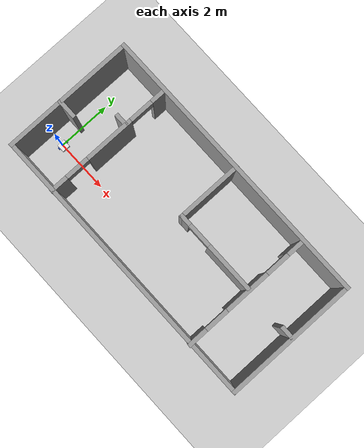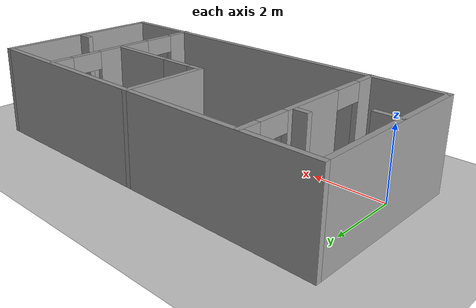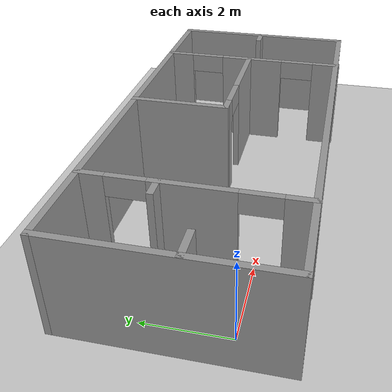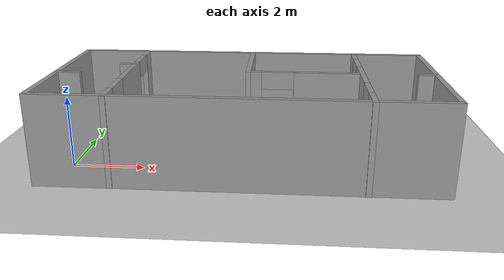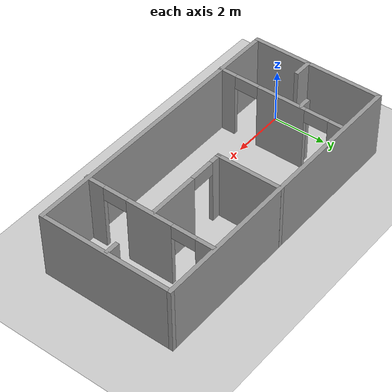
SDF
<sdf version="1.7">
 <world name="default">
  <light name="sun" type="directional">
   <pose>0 0 10 0 -0 0</pose>
   <diffuse>0.8 0.8 0.8 1</diffuse>
   <specular>0.2 0.2 0.2 1</specular>
   <attenuation>
    <range>1000</range>
    <constant>0.9</constant>
    <linear>0.01</linear>
    <quadratic>0.001</quadratic>
   </attenuation>
   <direction>-0.5 0.1 -0.9</direction>
   <spot><inner_angle>0</inner_angle><outer_angle>0</outer_angle><falloff>0</falloff></spot>
  </light>
  <model name="ground_plane">
   <static>1</static>
   <link name="link">
    <collision name="collision">
     <geometry><plane><normal>0 0 1</normal><size>100 100</size></plane></geometry>
     <surface>
      <contact><collide_bitmask>65535</collide_bitmask></contact>
      <friction><ode><mu>100</mu><mu2>50</mu2></ode></friction>
     </surface>
    </collision>
    <visual name="visual">
     <cast_shadows>0</cast_shadows>
     <geometry><plane><normal>0 0 1</normal><size>100 100</size></plane></geometry>
     <material>
      <script><uri>file://media/materials/scripts/gazebo.material</uri><name>Gazebo/Grey</name></script>
     </material>
    </visual>
   </link>
  </model>
  <gravity>0 0 -9.8</gravity>
  <magnetic_field>6e-06 2.3e-05 -4.2e-05</magnetic_field>
  <atmosphere type="adiabatic"/>
  <physics type="ode">
   <max_step_size>0.001</max_step_size>
   <real_time_factor>1</real_time_factor>
   <real_time_update_rate>1000</real_time_update_rate>
  </physics>
  <scene><ambient>0.4 0.4 0.4 1</ambient><background>0.7 0.7 0.7 1</background><shadows>1</shadows></scene>
  <audio><device>default</device></audio>
  <spherical_coordinates>
   <surface_model>EARTH_WGS84</surface_model>
   <latitude_deg>0</latitude_deg>
   <longitude_deg>0</longitude_deg>
   <elevation>0</elevation>
   <heading_deg>0</heading_deg>
  </spherical_coordinates>
  <model name="bot_name">
   <link name="base_link">
    <inertial>
     <pose>0.065 0 0.0625 0 -0 0</pose>
     <mass>0.6</mass>
     <inertia>
      <ixx>0.00525625</ixx>
      <ixy>0</ixy>
      <ixz>0.0005625</ixz>
      <iyy>0.00593125</iyy>
      <iyz>0</iyz>
      <izz>0.008275</izz>
     </inertia>
    </inertial>
    <collision name="base_link_fixed_joint_lump__chassis_collision">
     <pose>0.05 0 0.075 0 -0 0</pose>
     <geometry><box><size>0.3 0.3 0.15</size></box></geometry>
    </collision>
    <collision name="base_link_fixed_joint_lump__caster_wheel_collision_1">
     <pose>0.14 0 0 0 -0 0</pose>
     <geometry><sphere><radius>0.05</radius></sphere></geometry>
     <surface><friction><ode><mu>0.001</mu><mu2>0.001</mu2></ode></friction></surface>
    </collision>
    <visual name="base_link_fixed_joint_lump__chassis_visual">
     <pose>0.05 0 0.075 0 -0 0</pose>
     <geometry><box><size>0.3 0.3 0.15</size></box></geometry>
     <material>
      <script><name>Gazebo/White</name><uri>file://media/materials/scripts/gazebo.material</uri></script>
     </material>
    </visual>
    <visual name="base_link_fixed_joint_lump__caster_wheel_visual_1">
     <pose>0.14 0 0 0 -0 0</pose>
     <geometry><sphere><radius>0.05</radius></sphere></geometry>
     <material>
      <script><name>Gazebo/Black</name><uri>file://media/materials/scripts/gazebo.material</uri></script>
     </material>
    </visual>
   </link>
   <joint name="left_wheel_joint" type="revolute">
    <pose relative_to="base_link">0 0.175 0 -1.5708 0 0</pose>
    <parent>base_link</parent>
    <child>left_wheel</child>
    <axis>
     <xyz>0 0 1</xyz>
     <limit><lower>-1e+16</lower><upper>1e+16</upper></limit>
     <dynamics><spring_reference>0</spring_reference><spring_stiffness>0</spring_stiffness></dynamics>
    </axis>
   </joint>
   <link name="left_wheel">
    <pose relative_to="left_wheel_joint">0 0 0 0 -0 0</pose>
    <inertial>
     <mass>0.1</mass>
     <inertia>
      <ixx>7.58333e-05</ixx>
      <ixy>0</ixy>
      <ixz>0</ixz>
      <iyy>7.58333e-05</iyy>
      <iyz>0</iyz>
      <izz>0.000125</izz>
     </inertia>
    </inertial>
    <collision name="left_wheel_collision">
     <geometry><cylinder><length>0.04</length><radius>0.05</radius></cylinder></geometry>
    </collision>
    <visual name="left_wheel_visual">
     <geometry><cylinder><length>0.04</length><radius>0.05</radius></cylinder></geometry>
     <material>
      <script><name>Gazebo/Blue</name><uri>file://media/materials/scripts/gazebo.material</uri></script>
     </material>
    </visual>
   </link>
   <joint name="right_wheel_joint" type="revolute">
    <pose relative_to="base_link">0 -0.175 0 1.5708 -0 0</pose>
    <parent>base_link</parent>
    <child>right_wheel</child>
    <axis>
     <xyz>0 0 -1</xyz>
     <limit><lower>-1e+16</lower><upper>1e+16</upper></limit>
     <dynamics><spring_reference>0</spring_reference><spring_stiffness>0</spring_stiffness></dynamics>
    </axis>
   </joint>
   <link name="right_wheel">
    <pose relative_to="right_wheel_joint">0 0 0 0 -0 0</pose>
    <inertial>
     <mass>0.1</mass>
     <inertia>
      <ixx>7.58333e-05</ixx>
      <ixy>0</ixy>
      <ixz>0</ixz>
      <iyy>7.58333e-05</iyy>
      <iyz>0</iyz>
      <izz>0.000125</izz>
     </inertia>
    </inertial>
    <collision name="right_wheel_collision">
     <geometry><cylinder><length>0.04</length><radius>0.05</radius></cylinder></geometry>
    </collision>
    <visual name="right_wheel_visual">
     <geometry><cylinder><length>0.04</length><radius>0.05</radius></cylinder></geometry>
     <material>
      <script><name>Gazebo/Blue</name><uri>file://media/materials/scripts/gazebo.material</uri></script>
     </material>
    </visual>
   </link>
   <static>0</static>
   <plugin name="diff_drive" filename="libgazebo_ros_diff_drive.so">
    <left_joint>left_wheel_joint</left_joint>
    <right_joint>right_wheel_joint</right_joint>
    <wheel_separation>0.35</wheel_separation>
    <wheel_diameter>0.1</wheel_diameter>
    <max_wheel_torque>200</max_wheel_torque>
    <max_wheel_acceleration>10.0</max_wheel_acceleration>
    <odometry_frame>odom</odometry_frame>
    <robot_base_frame>base_link</robot_base_frame>
    <publish_odom>1</publish_odom>
    <publish_odom_tf>1</publish_odom_tf>
    <publish_wheel_tf>1</publish_wheel_tf>
   </plugin>
   <pose>0.022102 7.1e-05 0.05 0 1e-06 0.000387</pose>
  </model>
  <model name="BigRoom">
   <pose>4.73477 1.15842 0 0 -0 0</pose>
   <link name="Wall_43">
    <collision name="Wall_43_Collision">
     <geometry><box><size>10.75 0.15 2.5</size></box></geometry>
     <pose>0 0 1.25 0 -0 0</pose>
    </collision>
    <visual name="Wall_43_Visual">
     <pose>0 0 1.25 0 -0 0</pose>
     <geometry><box><size>10.75 0.15 2.5</size></box></geometry>
     <material>
      <script><uri>file://media/materials/scripts/gazebo.material</uri><name>Gazebo/Grey</name></script>
      <ambient>1 1 1 1</ambient>
     </material>
     <meta><layer>0</layer></meta>
    </visual>
    <pose>-0 -2.40954 0 0 -0 0</pose>
   </link>
   <link name="Wall_44">
    <collision name="Wall_44_Collision">
     <geometry><box><size>5 0.15 2.5</size></box></geometry>
     <pose>0 0 1.25 0 -0 0</pose>
    </collision>
    <visual name="Wall_44_Visual">
     <pose>0 0 1.25 0 -0 0</pose>
     <geometry><box><size>5 0.15 2.5</size></box></geometry>
     <material>
      <script><uri>file://media/materials/scripts/gazebo.material</uri><name>Gazebo/Grey</name></script>
      <ambient>1 1 1 1</ambient>
     </material>
     <meta><layer>0</layer></meta>
    </visual>
    <pose>5.3 0.015463 0 0 -0 1.5708</pose>
   </link>
   <link name="Wall_45">
    <collision name="Wall_45_Collision">
     <geometry><box><size>10.75 0.15 2.5</size></box></geometry>
     <pose>0 0 1.25 0 -0 0</pose>
    </collision>
    <visual name="Wall_45_Visual">
     <pose>0 0 1.25 0 -0 0</pose>
     <geometry><box><size>10.75 0.15 2.5</size></box></geometry>
     <material>
      <script><uri>file://media/materials/scripts/gazebo.material</uri><name>Gazebo/Grey</name></script>
      <ambient>1 1 1 1</ambient>
     </material>
     <meta><layer>0</layer></meta>
    </visual>
    <pose>-0 2.44046 0 0 -0 3.14159</pose>
   </link>
   <link name="Wall_46">
    <collision name="Wall_46_Collision">
     <geometry><box><size>5 0.15 2.5</size></box></geometry>
     <pose>0 0 1.25 0 -0 0</pose>
    </collision>
    <visual name="Wall_46_Visual">
     <pose>0 0 1.25 0 -0 0</pose>
     <geometry><box><size>5 0.15 2.5</size></box></geometry>
     <material>
      <script><uri>file://media/materials/scripts/gazebo.material</uri><name>Gazebo/Grey</name></script>
      <ambient>1 1 1 1</ambient>
     </material>
     <meta><layer>0</layer></meta>
    </visual>
    <pose>-5.3 0.015463 0 0 -0 -1.5708</pose>
   </link>
   <link name="Wall_48">
    <pose>-3.3177 0 0 0 -0 -1.5708</pose>
    <visual name="Wall_48_Visual_0">
     <pose>-2.17685 0 1.25 0 -0 0</pose>
     <geometry><box><size>0.646304 0.15 2.5</size></box></geometry>
     <material>
      <script><uri>file://media/materials/scripts/gazebo.material</uri><name>Gazebo/Grey</name></script>
      <ambient>1 1 1 1</ambient>
     </material>
     <meta><layer>0</layer></meta>
    </visual>
    <collision name="Wall_48_Collision_0">
     <geometry><box><size>0.646304 0.15 2.5</size></box></geometry>
     <pose>-2.17685 0 1.25 0 -0 0</pose>
    </collision>
    <visual name="Wall_48_Visual_1">
     <pose>-0.023696 0 1.25 0 -0 0</pose>
     <geometry><box><size>1.86 0.15 2.5</size></box></geometry>
     <material>
      <script><uri>file://media/materials/scripts/gazebo.material</uri><name>Gazebo/Grey</name></script>
      <ambient>1 1 1 1</ambient>
     </material>
     <meta><layer>0</layer></meta>
    </visual>
    <collision name="Wall_48_Collision_1">
     <geometry><box><size>1.86 0.15 2.5</size></box></geometry>
     <pose>-0.023696 0 1.25 0 -0 0</pose>
    </collision>
    <visual name="Wall_48_Visual_2">
     <pose>2.15315 0 1.25 0 -0 0</pose>
     <geometry><box><size>0.693696 0.15 2.5</size></box></geometry>
     <material>
      <script><uri>file://media/materials/scripts/gazebo.material</uri><name>Gazebo/Grey</name></script>
      <ambient>1 1 1 1</ambient>
     </material>
     <meta><layer>0</layer></meta>
    </visual>
    <collision name="Wall_48_Collision_2">
     <geometry><box><size>0.693696 0.15 2.5</size></box></geometry>
     <pose>2.15315 0 1.25 0 -0 0</pose>
    </collision>
    <visual name="Wall_48_Visual_3">
     <pose>-1.4037 0 2.25 0 -0 0</pose>
     <geometry><box><size>0.9 0.15 0.5</size></box></geometry>
     <material>
      <script><uri>file://media/materials/scripts/gazebo.material</uri><name>Gazebo/Grey</name></script>
      <ambient>1 1 1 1</ambient>
     </material>
     <meta><layer>0</layer></meta>
    </visual>
    <collision name="Wall_48_Collision_3">
     <geometry><box><size>0.9 0.15 0.5</size></box></geometry>
     <pose>-1.4037 0 2.25 0 -0 0</pose>
    </collision>
    <visual name="Wall_48_Visual_4">
     <pose>1.3563 0 2.25 0 -0 0</pose>
     <geometry><box><size>0.9 0.15 0.5</size></box></geometry>
     <material>
      <script><uri>file://media/materials/scripts/gazebo.material</uri><name>Gazebo/Grey</name></script>
      <ambient>1 1 1 1</ambient>
     </material>
     <meta><layer>0</layer></meta>
    </visual>
    <collision name="Wall_48_Collision_4">
     <geometry><box><size>0.9 0.15 0.5</size></box></geometry>
     <pose>1.3563 0 2.25 0 -0 0</pose>
    </collision>
   </link>
   <link name="Wall_50">
    <pose>3.27361 -0.017391 0 0 -0 -1.5708</pose>
    <visual name="Wall_50_Visual_0">
     <pose>-2.13954 0 1.25 0 -0 0</pose>
     <geometry><box><size>0.720913 0.15 2.5</size></box></geometry>
     <material>
      <script><uri>file://media/materials/scripts/gazebo.material</uri><name>Gazebo/Grey</name></script>
      <ambient>1 1 1 1</ambient>
     </material>
     <meta><layer>0</layer></meta>
    </visual>
    <collision name="Wall_50_Collision_0">
     <geometry><box><size>0.720913 0.15 2.5</size></box></geometry>
     <pose>-2.13954 0 1.25 0 -0 0</pose>
    </collision>
    <visual name="Wall_50_Visual_1">
     <pose>-0.018087 0 1.25 0 -0 0</pose>
     <geometry><box><size>1.722 0.15 2.5</size></box></geometry>
     <material>
      <script><uri>file://media/materials/scripts/gazebo.material</uri><name>Gazebo/Grey</name></script>
      <ambient>1 1 1 1</ambient>
     </material>
     <meta><layer>0</layer></meta>
    </visual>
    <collision name="Wall_50_Collision_1">
     <geometry><box><size>1.722 0.15 2.5</size></box></geometry>
     <pose>-0.018087 0 1.25 0 -0 0</pose>
    </collision>
    <visual name="Wall_50_Visual_2">
     <pose>2.12146 0 1.25 0 -0 0</pose>
     <geometry><box><size>0.757087 0.15 2.5</size></box></geometry>
     <material>
      <script><uri>file://media/materials/scripts/gazebo.material</uri><name>Gazebo/Grey</name></script>
      <ambient>1 1 1 1</ambient>
     </material>
     <meta><layer>0</layer></meta>
    </visual>
    <collision name="Wall_50_Collision_2">
     <geometry><box><size>0.757087 0.15 2.5</size></box></geometry>
     <pose>2.12146 0 1.25 0 -0 0</pose>
    </collision>
    <visual name="Wall_50_Visual_3">
     <pose>-1.32909 0 2.25 0 -0 0</pose>
     <geometry><box><size>0.9 0.15 0.5</size></box></geometry>
     <material>
      <script><uri>file://media/materials/scripts/gazebo.material</uri><name>Gazebo/Grey</name></script>
      <ambient>1 1 1 1</ambient>
     </material>
     <meta><layer>0</layer></meta>
    </visual>
    <collision name="Wall_50_Collision_3">
     <geometry><box><size>0.9 0.15 0.5</size></box></geometry>
     <pose>-1.32909 0 2.25 0 -0 0</pose>
    </collision>
    <visual name="Wall_50_Visual_4">
     <pose>1.29291 0 2.25 0 -0 0</pose>
     <geometry><box><size>0.9 0.15 0.5</size></box></geometry>
     <material>
      <script><uri>file://media/materials/scripts/gazebo.material</uri><name>Gazebo/Grey</name></script>
      <ambient>1 1 1 1</ambient>
     </material>
     <meta><layer>0</layer></meta>
    </visual>
    <collision name="Wall_50_Collision_4">
     <geometry><box><size>0.9 0.15 0.5</size></box></geometry>
     <pose>1.29291 0 2.25 0 -0 0</pose>
    </collision>
   </link>
   <link name="Wall_52">
    <collision name="Wall_52_Collision">
     <geometry><box><size>2.5 0.15 2.5</size></box></geometry>
     <pose>0 0 1.25 0 -0 0</pose>
    </collision>
    <visual name="Wall_52_Visual">
     <pose>0 0 1.25 0 -0 0</pose>
     <geometry><box><size>2.5 0.15 2.5</size></box></geometry>
     <material>
      <script><uri>file://media/materials/scripts/gazebo.material</uri><name>Gazebo/Grey</name></script>
      <ambient>1 1 1 1</ambient>
     </material>
     <meta><layer>0</layer></meta>
    </visual>
    <pose>0.090999 1.26739 0 0 -0 -1.5708</pose>
   </link>
   <link name="Wall_56">
    <pose>1.641 0.092391 0 0 -0 0</pose>
    <visual name="Wall_56_Visual_0">
     <pose>-1.39605 0 1.25 0 -0 0</pose>
     <geometry><box><size>0.4579 0.15 2.5</size></box></geometry>
     <material>
      <script><uri>file://media/materials/scripts/gazebo.material</uri><name>Gazebo/Grey</name></script>
      <ambient>1 1 1 1</ambient>
     </material>
     <meta><layer>0</layer></meta>
    </visual>
    <collision name="Wall_56_Collision_0">
     <geometry><box><size>0.4579 0.15 2.5</size></box></geometry>
     <pose>-1.39605 0 1.25 0 -0 0</pose>
    </collision>
    <visual name="Wall_56_Visual_1">
     <pose>0.67895 0 1.25 0 -0 0</pose>
     <geometry><box><size>1.8921 0.15 2.5</size></box></geometry>
     <material>
      <script><uri>file://media/materials/scripts/gazebo.material</uri><name>Gazebo/Grey</name></script>
      <ambient>1 1 1 1</ambient>
     </material>
     <meta><layer>0</layer></meta>
    </visual>
    <collision name="Wall_56_Collision_1">
     <geometry><box><size>1.8921 0.15 2.5</size></box></geometry>
     <pose>0.67895 0 1.25 0 -0 0</pose>
    </collision>
    <visual name="Wall_56_Visual_2">
     <pose>-0.7171 0 2.25 0 -0 0</pose>
     <geometry><box><size>0.9 0.15 0.5</size></box></geometry>
     <material>
      <script><uri>file://media/materials/scripts/gazebo.material</uri><name>Gazebo/Grey</name></script>
      <ambient>1 1 1 1</ambient>
     </material>
     <meta><layer>0</layer></meta>
    </visual>
    <collision name="Wall_56_Collision_2">
     <geometry><box><size>0.9 0.15 0.5</size></box></geometry>
     <pose>-0.7171 0 2.25 0 -0 0</pose>
    </collision>
   </link>
   <link name="Wall_59">
    <collision name="Wall_59_Collision">
     <geometry><box><size>0.5 0.15 2.5</size></box></geometry>
     <pose>0 0 1.25 0 -0 0</pose>
    </collision>
    <visual name="Wall_59_Visual">
     <pose>0 0 1.25 0 -0 0</pose>
     <geometry><box><size>0.5 0.15 2.5</size></box></geometry>
     <material>
      <script><uri>file://media/materials/scripts/gazebo.material</uri><name>Gazebo/Grey</name></script>
      <ambient>1 1 1 1</ambient>
     </material>
     <meta><layer>0</layer></meta>
    </visual>
    <pose>-3.5291 0.736696 0 0 -0 3.14159</pose>
   </link>
   <link name="Wall_61">
    <collision name="Wall_61_Collision">
     <geometry><box><size>0.75 0.15 2.5</size></box></geometry>
     <pose>0 0 1.25 0 -0 0</pose>
    </collision>
    <visual name="Wall_61_Visual">
     <pose>0 0 1.25 0 -0 0</pose>
     <geometry><box><size>0.75 0.15 2.5</size></box></geometry>
     <material>
      <script><uri>file://media/materials/scripts/gazebo.material</uri><name>Gazebo/Grey</name></script>
      <ambient>1 1 1 1</ambient>
     </material>
     <meta><layer>0</layer></meta>
    </visual>
    <pose>-4.9861 -0.321304 0 0 -0 0</pose>
   </link>
   <link name="Wall_63">
    <collision name="Wall_63_Collision">
     <geometry><box><size>0.5 0.15 2.5</size></box></geometry>
     <pose>0 0 1.25 0 -0 0</pose>
    </collision>
    <visual name="Wall_63_Visual">
     <pose>0 0 1.25 0 -0 0</pose>
     <geometry><box><size>0.5 0.15 2.5</size></box></geometry>
     <material>
      <script><uri>file://media/materials/scripts/gazebo.material</uri><name>Gazebo/Grey</name></script>
      <ambient>1 1 1 1</ambient>
     </material>
     <meta><layer>0</layer></meta>
    </visual>
    <pose>5.0499 0.069696 0 0 -0 3.14159</pose>
   </link>
   <static>1</static>
  </model>
 </world>
</sdf>
